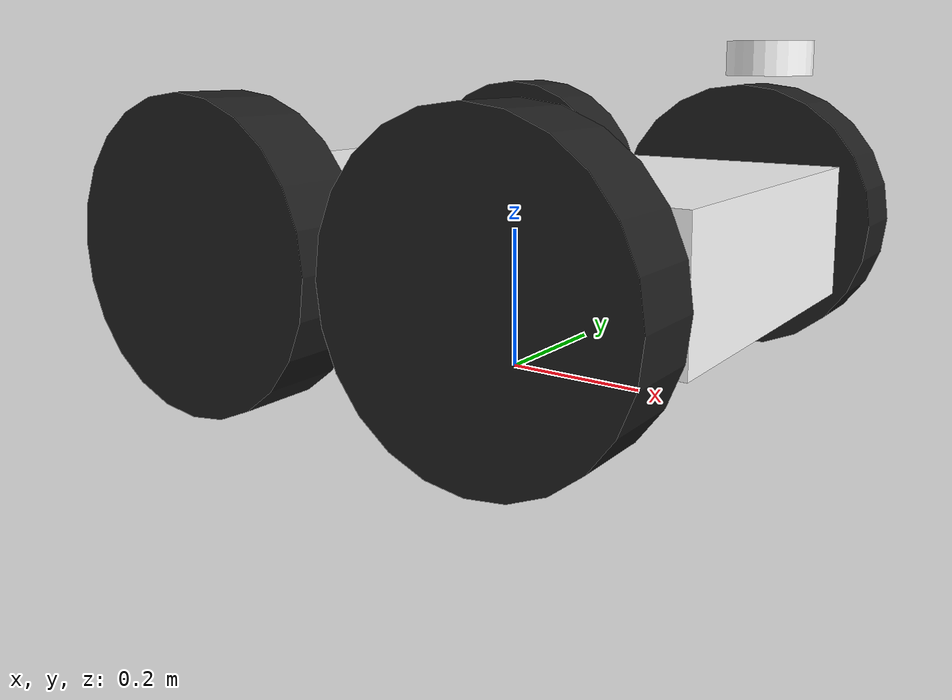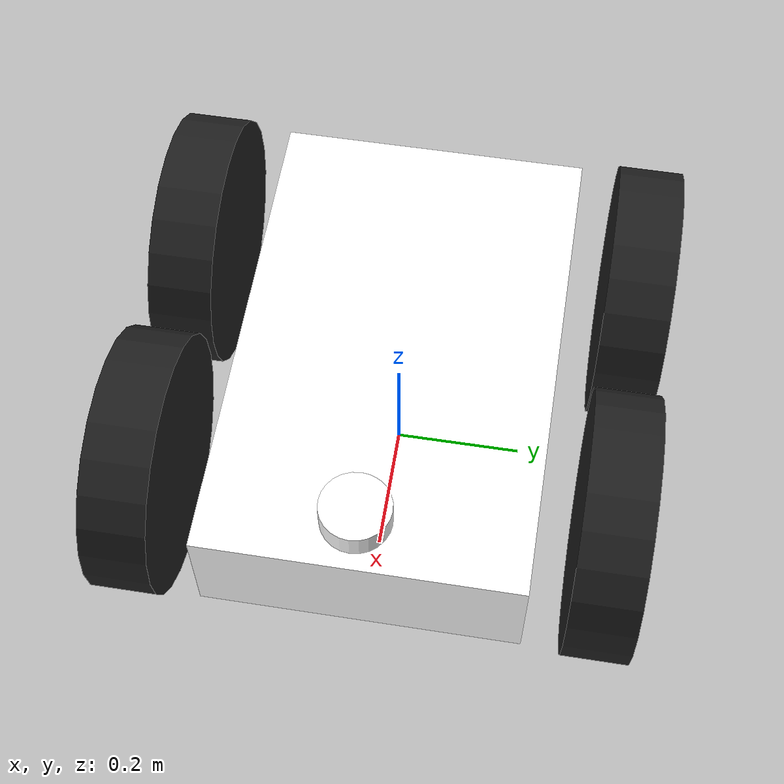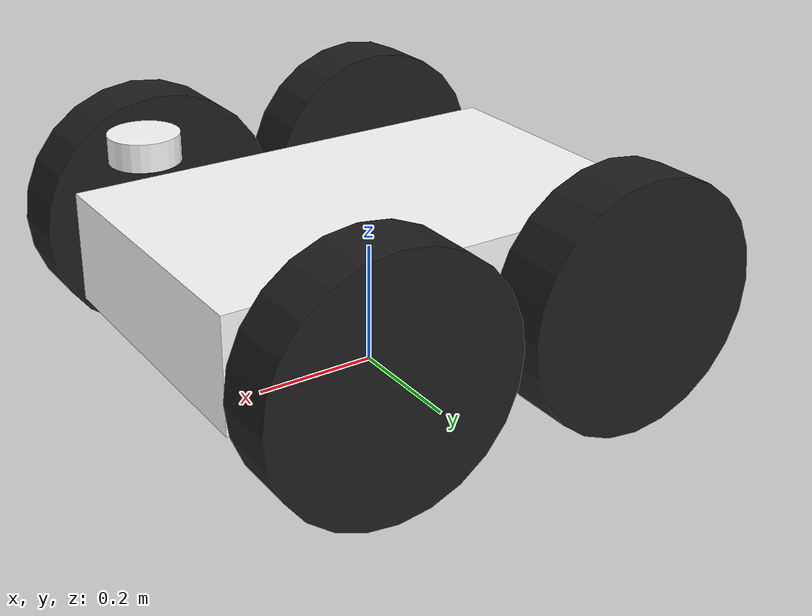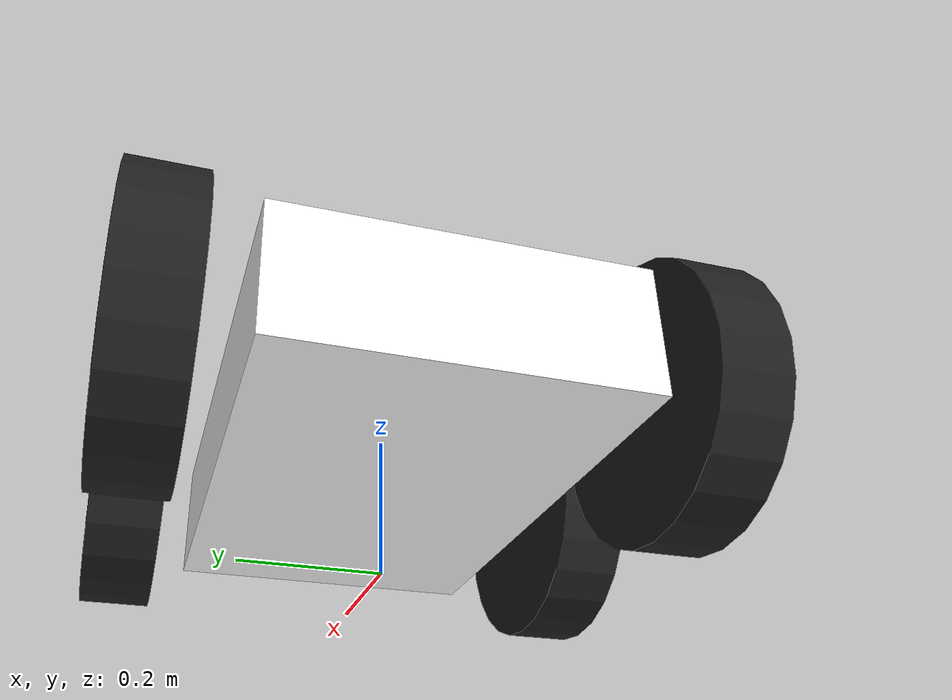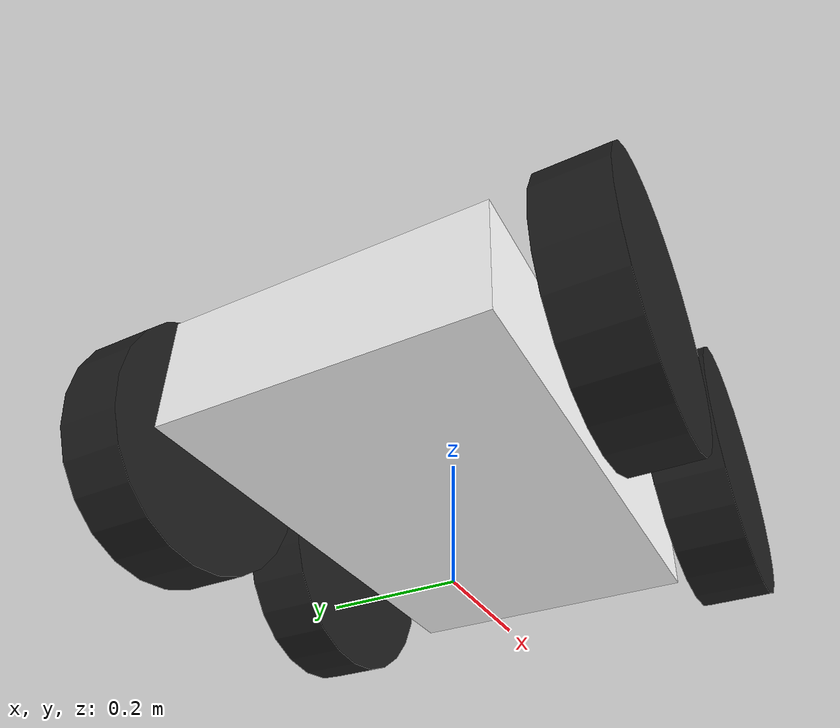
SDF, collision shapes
<sdf version='1.11'>
  <plugin filename="gz-sim-sensors-system" name="gz::sim::systems::Sensors">
    <render_engine>ogre2</render_engine>
  </plugin>
  <model name='robot_name'>
    <link name='base_link'>
      <inertial>
        <pose>0.011709677419354841 0 0.20770967741935481 0 0 0</pose>
        <mass>15.5</mass>
        <inertia>
          <ixx>0.362270443548387</ixx>
          <ixy>0</ixy>
          <ixz>-0.041979193548387098</ixz>
          <iyy>0.85399838709677423</iyy>
          <iyz>0</iyz>
          <izz>1.0798904435483869</izz>
        </inertia>
      </inertial>
      <collision name='base_link_fixed_joint_lump__base_collision'>
        <pose>0 0 0.20000000000000001 0 0 0</pose>
        <geometry>
          <box>
            <size>0.76000000000000001 0.48499999999999999 0.17999999999999999</size>
          </box>
        </geometry>
      </collision>
      <collision name='base_link_fixed_joint_lump__laser_collision_1'>
        <pose>0.36299999999999999 0 0.439 0 0 0</pose>
        <geometry>
          <cylinder>
            <length>0.040000000000000001</length>
            <radius>0.050000000000000003</radius>
          </cylinder>
        </geometry>
      </collision>
      <visual name='base_link_fixed_joint_lump__base_visual'>
        <pose>0 0 0.20000000000000001 0 0 0</pose>
        <geometry>
          <mesh>
            <scale>1 1 1</scale>
            <uri>model://robot_description/meshes/base.stl</uri>
          </mesh>
        </geometry>
        <material>
          <diffuse>1 1 1 1</diffuse>
          <ambient>1 1 1 1</ambient>
        </material>
      </visual>
      <visual name='base_link_fixed_joint_lump__laser_visual_1'>
        <pose>0.36299999999999999 0 0.439 0 0 0</pose>
        <geometry>
          <mesh>
            <scale>1 1 1</scale>
            <uri>model://robot_description/meshes/mid_360.stl</uri>
          </mesh>
        </geometry>
        <material>
          <diffuse>0 0 1 1</diffuse>
          <ambient>0 0 1 1</ambient>
        </material>
      </visual>
    </link>
    <joint name='front_left_wheel_joint' type='revolute'>
      <pose relative_to='base_link'>0.20999999999999999 0.34999999999999998 0.20000000000000001 0 0 3.1415926000000001</pose>
      <parent>base_link</parent>
      <child>front_left_wheel</child>
      <axis>
        <xyz>0 -1 0</xyz>
        <limit>
          <lower>-inf</lower>
          <upper>inf</upper>
        </limit>
        <dynamics>
          <spring_reference>0</spring_reference>
          <spring_stiffness>0</spring_stiffness>
        </dynamics>
      </axis>
    </joint>
    <link name='front_left_wheel'>
      <pose relative_to='front_left_wheel_joint'>0 0 0 0 0 0</pose>
      <inertial>
        <pose>0 0 0 0 0 0</pose>
        <mass>1</mass>
        <inertia>
          <ixx>0.010833333333333341</ixx>
          <ixy>0</ixy>
          <ixz>0</ixz>
          <iyy>0.02</iyy>
          <iyz>0</iyz>
          <izz>0.010833333333333341</izz>
        </inertia>
      </inertial>
      <collision name='front_left_wheel_collision'>
        <pose>0 0 0 1.5708 0 0</pose>
        <geometry>
          <cylinder>
            <length>0.10000000000000001</length>
            <radius>0.20000000000000001</radius>
          </cylinder>
        </geometry>
        <surface>
          <contact>
            <ode/>
          </contact>
          <friction>
            <ode>
              <mu>0.80000000000000004</mu>
              <mu2>0.65000000000000002</mu2>
            </ode>
          </friction>
        </surface>
      </collision>
      <visual name='front_left_wheel_visual'>
        <pose>0 0 0 0 0 0</pose>
        <geometry>
          <mesh>
            <scale>1 1 1</scale>
            <uri>model://robot_description/meshes/blue_tyre.stl</uri>
          </mesh>
        </geometry>
        <material>
          <script>
            <name>Gazebo/Black</name>
            <uri>file://media/materials/scripts/gazebo.material</uri>
          </script>
          <diffuse>0 0 0 1</diffuse>
          <ambient>0 0 0 1</ambient>
        </material>
      </visual>
    </link>
    <joint name='front_right_wheel_joint' type='revolute'>
      <pose relative_to='base_link'>0.20999999999999999 -0.34999999999999998 0.20000000000000001 0 0 0</pose>
      <parent>base_link</parent>
      <child>front_right_wheel</child>
      <axis>
        <xyz>0 1 0</xyz>
        <limit>
          <lower>-inf</lower>
          <upper>inf</upper>
        </limit>
        <dynamics>
          <spring_reference>0</spring_reference>
          <spring_stiffness>0</spring_stiffness>
        </dynamics>
      </axis>
    </joint>
    <link name='front_right_wheel'>
      <pose relative_to='front_right_wheel_joint'>0 0 0 0 0 0</pose>
      <inertial>
        <pose>0 0 0 0 0 0</pose>
        <mass>1</mass>
        <inertia>
          <ixx>0.010833333333333341</ixx>
          <ixy>0</ixy>
          <ixz>0</ixz>
          <iyy>0.02</iyy>
          <iyz>0</iyz>
          <izz>0.010833333333333341</izz>
        </inertia>
      </inertial>
      <collision name='front_right_wheel_collision'>
        <pose>0 0 0 1.5708 0 0</pose>
        <geometry>
          <cylinder>
            <length>0.10000000000000001</length>
            <radius>0.20000000000000001</radius>
          </cylinder>
        </geometry>
        <surface>
          <contact>
            <ode/>
          </contact>
          <friction>
            <ode>
              <mu>0.80000000000000004</mu>
              <mu2>0.65000000000000002</mu2>
            </ode>
          </friction>
        </surface>
      </collision>
      <visual name='front_right_wheel_visual'>
        <pose>0 0 0 0 0 0</pose>
        <geometry>
          <mesh>
            <scale>1 1 1</scale>
            <uri>model://robot_description/meshes/blue_tyre.stl</uri>
          </mesh>
        </geometry>
        <material>
          <script>
            <name>Gazebo/Black</name>
            <uri>file://media/materials/scripts/gazebo.material</uri>
          </script>
          <diffuse>0 0 0 1</diffuse>
          <ambient>0 0 0 1</ambient>
        </material>
      </visual>
    </link>
    <joint name='rear_left_wheel_joint' type='revolute'>
      <pose relative_to='base_link'>-0.20999999999999999 0.34999999999999998 0.20000000000000001 0 0 -3.1415926000000001</pose>
      <parent>base_link</parent>
      <child>rear_left_wheel</child>
      <axis>
        <xyz>0 -1 0</xyz>
        <limit>
          <lower>-inf</lower>
          <upper>inf</upper>
        </limit>
        <dynamics>
          <spring_reference>0</spring_reference>
          <spring_stiffness>0</spring_stiffness>
        </dynamics>
      </axis>
    </joint>
    <link name='rear_left_wheel'>
      <pose relative_to='rear_left_wheel_joint'>0 0 0 0 0 0</pose>
      <inertial>
        <pose>0 0 0 0 0 0</pose>
        <mass>1</mass>
        <inertia>
          <ixx>0.010833333333333341</ixx>
          <ixy>0</ixy>
          <ixz>0</ixz>
          <iyy>0.02</iyy>
          <iyz>0</iyz>
          <izz>0.010833333333333341</izz>
        </inertia>
      </inertial>
      <collision name='rear_left_wheel_collision'>
        <pose>0 0 0 1.5708 0 0</pose>
        <geometry>
          <cylinder>
            <length>0.10000000000000001</length>
            <radius>0.20000000000000001</radius>
          </cylinder>
        </geometry>
        <surface>
          <contact>
            <ode/>
          </contact>
          <friction>
            <ode>
              <mu>0.80000000000000004</mu>
              <mu2>0.65000000000000002</mu2>
            </ode>
          </friction>
        </surface>
      </collision>
      <visual name='rear_left_wheel_visual'>
        <pose>0 0 0 0 0 0</pose>
        <geometry>
          <mesh>
            <scale>1 1 1</scale>
            <uri>model://robot_description/meshes/blue_tyre.stl</uri>
          </mesh>
        </geometry>
        <material>
          <script>
            <name>Gazebo/Black</name>
            <uri>file://media/materials/scripts/gazebo.material</uri>
          </script>
          <diffuse>0 0 0 1</diffuse>
          <ambient>0 0 0 1</ambient>
        </material>
      </visual>
    </link>
    <joint name='rear_right_wheel_joint' type='revolute'>
      <pose relative_to='base_link'>-0.20999999999999999 -0.34999999999999998 0.20000000000000001 0 0 0</pose>
      <parent>base_link</parent>
      <child>rear_right_wheel</child>
      <axis>
        <xyz>0 1 0</xyz>
        <limit>
          <lower>-inf</lower>
          <upper>inf</upper>
        </limit>
        <dynamics>
          <spring_reference>0</spring_reference>
          <spring_stiffness>0</spring_stiffness>
        </dynamics>
      </axis>
    </joint>
    <link name='rear_right_wheel'>
      <pose relative_to='rear_right_wheel_joint'>0 0 0 0 0 0</pose>
      <inertial>
        <pose>0 0 0 0 0 0</pose>
        <mass>1</mass>
        <inertia>
          <ixx>0.010833333333333341</ixx>
          <ixy>0</ixy>
          <ixz>0</ixz>
          <iyy>0.02</iyy>
          <iyz>0</iyz>
          <izz>0.010833333333333341</izz>
        </inertia>
      </inertial>
      <collision name='rear_right_wheel_collision'>
        <pose>0 0 0 1.5708 0 0</pose>
        <geometry>
          <cylinder>
            <length>0.10000000000000001</length>
            <radius>0.20000000000000001</radius>
          </cylinder>
        </geometry>
        <surface>
          <contact>
            <ode/>
          </contact>
          <friction>
            <ode>
              <mu>0.80000000000000004</mu>
              <mu2>0.65000000000000002</mu2>
            </ode>
          </friction>
        </surface>
      </collision>
      <visual name='rear_right_wheel_visual'>
        <pose>0 0 0 0 0 0</pose>
        <geometry>
          <mesh>
            <scale>1 1 1</scale>
            <uri>model://robot_description/meshes/blue_tyre.stl</uri>
          </mesh>
        </geometry>
        <material>
          <script>
            <name>Gazebo/Black</name>
            <uri>file://media/materials/scripts/gazebo.material</uri>
          </script>
          <diffuse>0 0 0 1</diffuse>
          <ambient>0 0 0 1</ambient>
        </material>
      </visual>
    </link>
    <frame name='base_foot_to_base_link' attached_to='base_link'>
      <pose>0 0 0 0 0 0</pose>
    </frame>
    <frame name='base_footprint' attached_to='base_foot_to_base_link'>
      <pose>0 0 0 0 0 0</pose>
    </frame>
    <frame name='laser_joint' attached_to='base'>
      <pose>0.36299999999999999 0 0.23899999999999999 0 0 0</pose>
    </frame>
    <frame name='laser' attached_to='laser_joint'>
      <pose>0 0 0 0 0 0</pose>
    </frame>
    <frame name='base_link_to_base' attached_to='base_link'>
      <pose>0 0 0.20000000000000001 0 0 0</pose>
    </frame>
    <frame name='base' attached_to='base_link_to_base'>
      <pose>0 0 0 0 0 0</pose>
    </frame>
    <sensor name='gpu_lidar' type='gpu_lidar'>"
      <pose relative_to='base_lnk'>0.36299999999999999 0 0.439 0 0 0</pose>
      <topic>scan</topic>
      <update_rate>10</update_rate>
      <ray>
        <scan>
          <horizontal>
            <samples>640</samples>
            <resolution>1</resolution>
            <min_angle>-1.396263</min_angle>
            <max_angle>1.396263</max_angle>
          </horizontal>
          <vertical>
            <samples>1</samples>
            <resolution>0.01</resolution>
            <min_angle>0</min_angle>
            <max_angle>0</max_angle>
          </vertical>
        </scan>
        <range>
          <min>0.08</min>
          <max>10.0</max>
          <resolution>0.01</resolution>
        </range>
      </ray>
      <always_on>1</always_on>
      <visualize>true</visualize>
    </sensor>

  </model>
</sdf>
